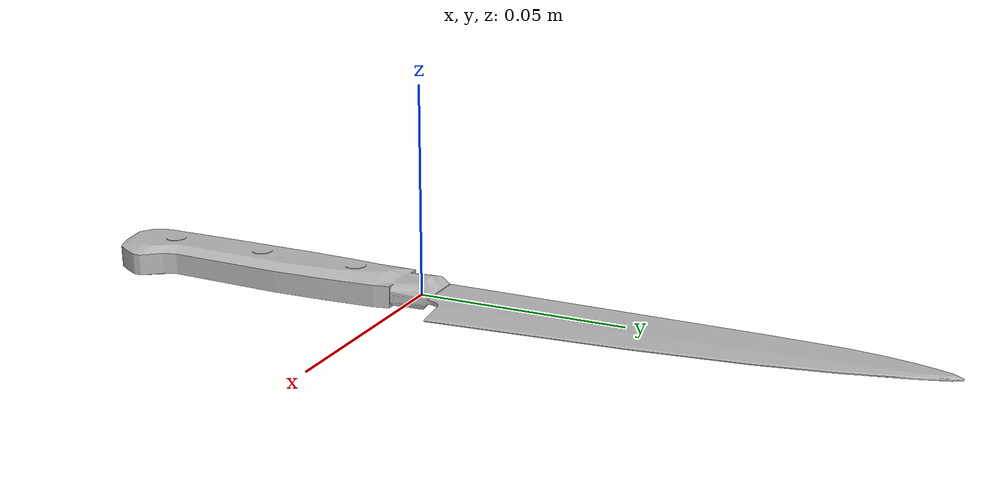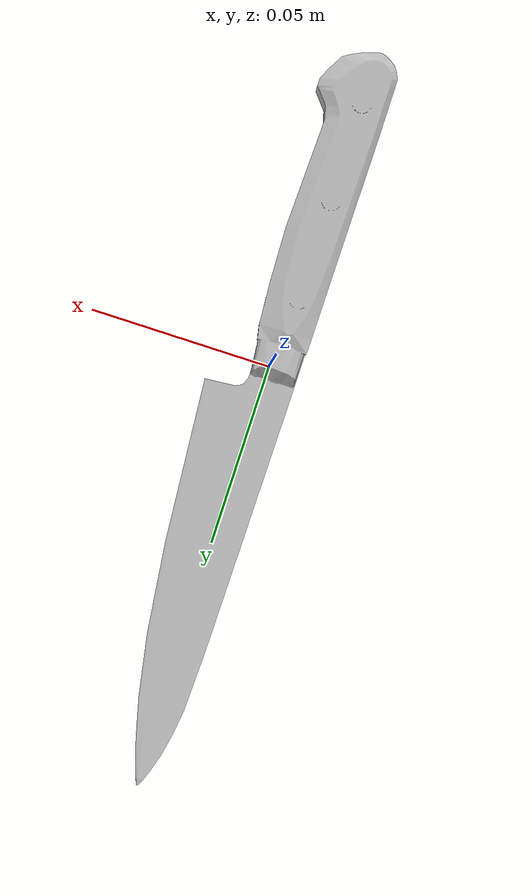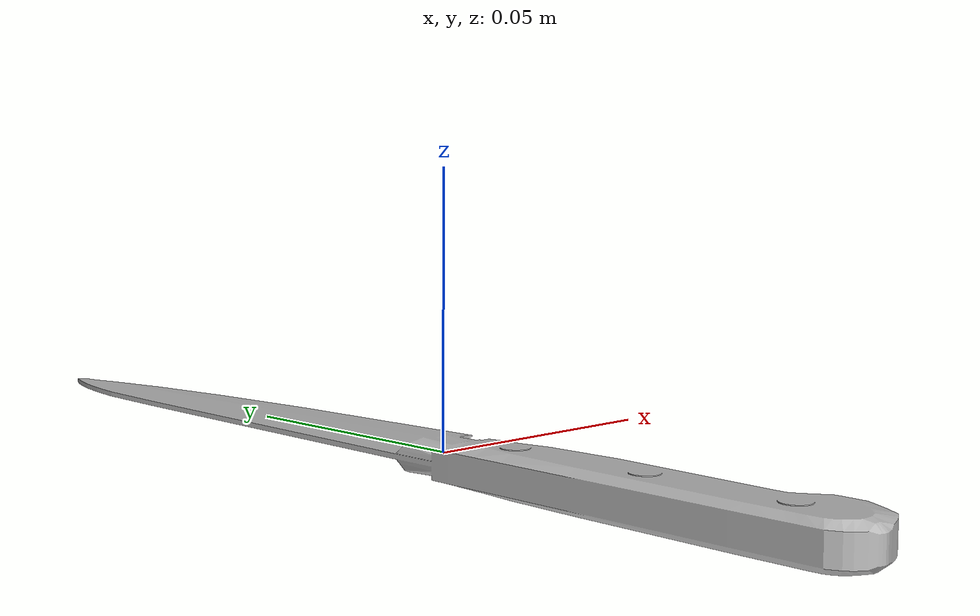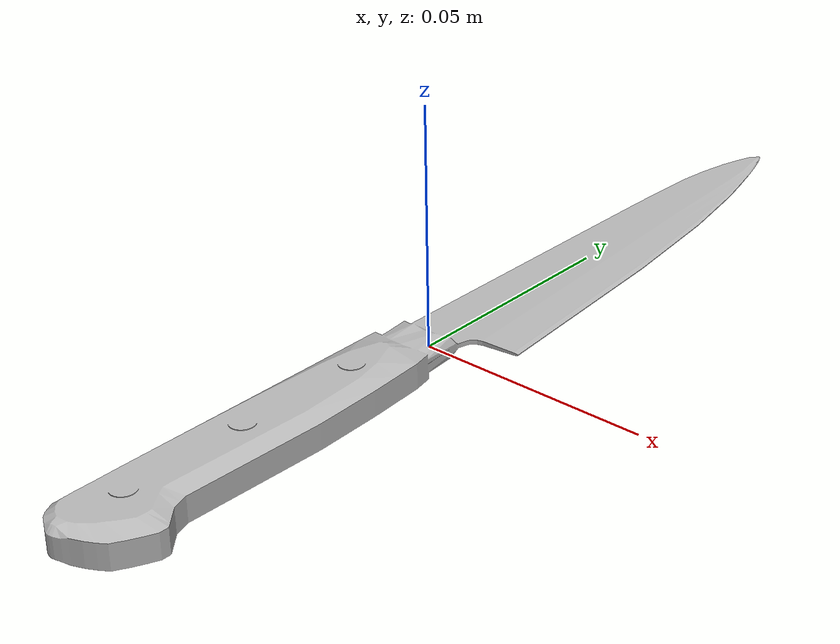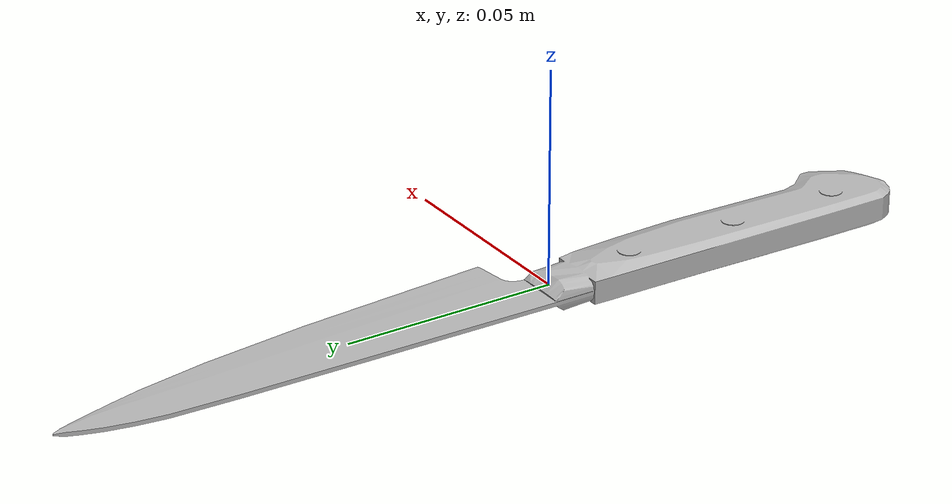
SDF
<?xml version='1.0'?>
<sdf version='1.6'>
  <model name='knife'>
    <link name='knife_link'>
      <pose frame=''>0 0 0 0 0 0</pose>
       <visual name='visual'>
        <pose frame=''>0 0 0 0 0 0</pose>
        <geometry>
          <mesh>
            <uri>model://knife/meshes/knife.dae</uri>
            <scale>1 1 1</scale>
          </mesh>
        </geometry>
        <cast_shadows>1</cast_shadows>
        <transparency>0</transparency>
      </visual>
      <inertial>
        <mass>1.0</mass>
        <inertia>
          <ixx>0.0083</ixx>       <!-- for a box: ixx = 0.083 * mass * (y*y + z*z) -->
          <ixy>0.0</ixy>         <!-- for a box: ixy = 0 -->
          <ixz>0.0</ixz>         <!-- for a box: ixz = 0 -->
          <iyy>0.0083</iyy>       <!-- for a box: iyy = 0.083 * mass * (x*x + z*z) -->
          <iyz>0.0</iyz>         <!-- for a box: iyz = 0 -->
          <izz>0.0083</izz>       <!-- for a box: izz = 0.083 * mass * (x*x + y*y) -->
        </inertia>
      </inertial>
      <collision name="collision">
        <geometry>
          <box>
            <size>0.0245 0.208 0.00777</size>
          </box>
        </geometry>
      </collision>

    </link>
    <static>0</static>
    <allow_auto_disable>0</allow_auto_disable>
  </model>
</sdf>
